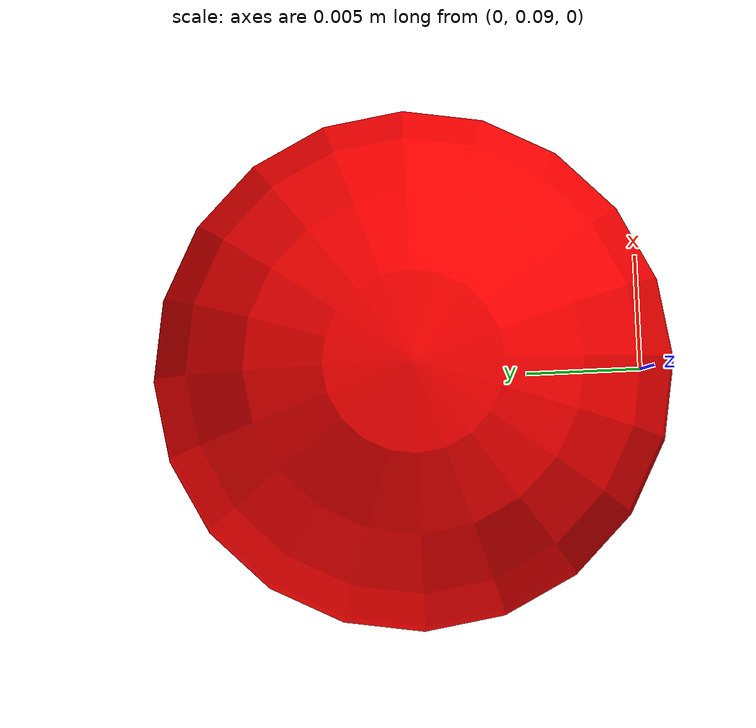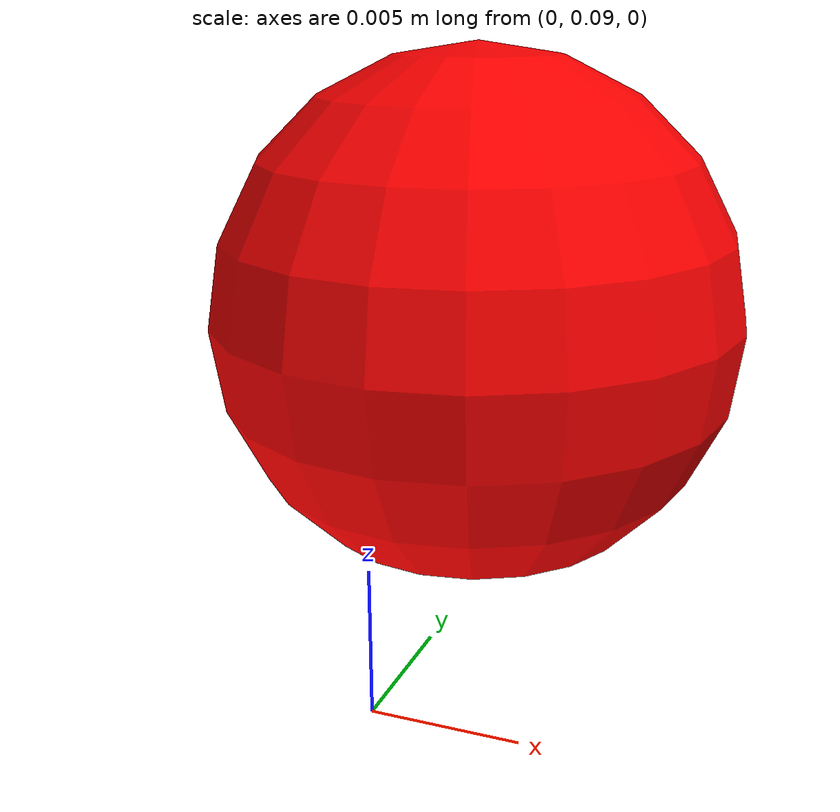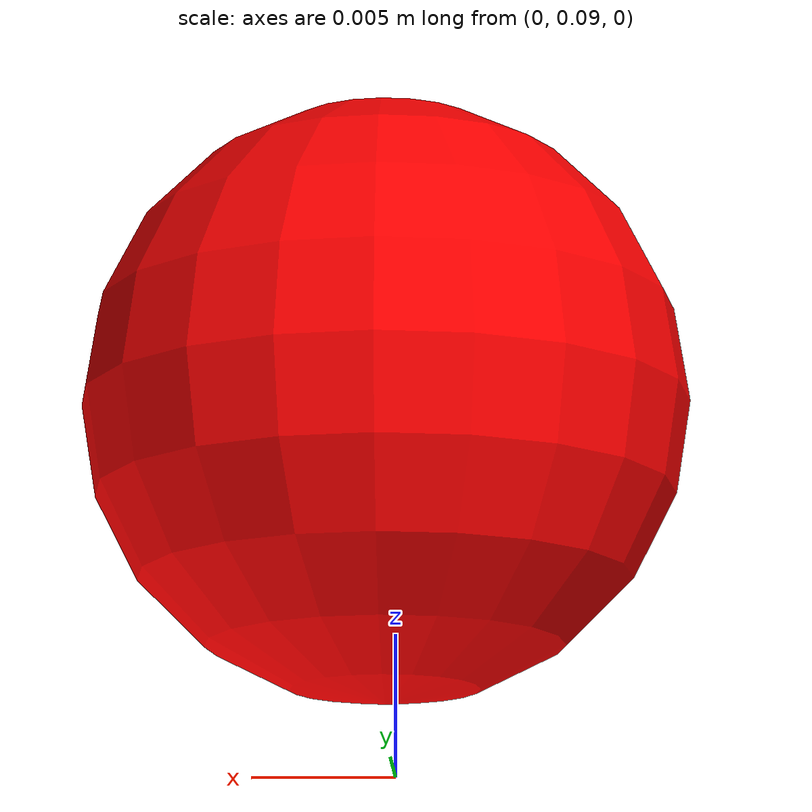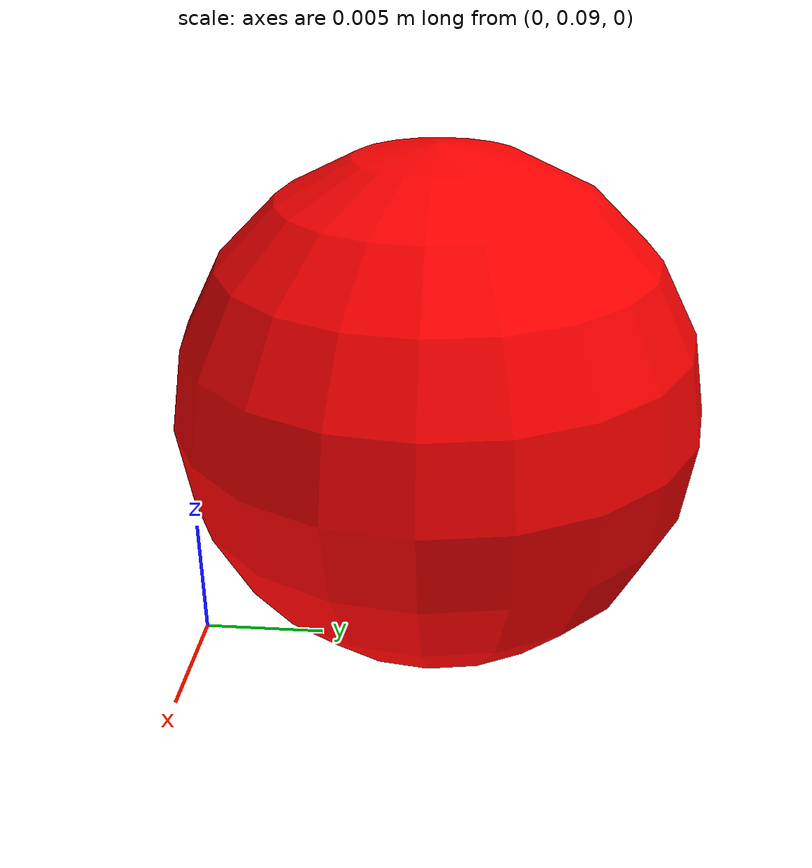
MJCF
<mujoco model="push">
  <!-- Solver options live in Python (configs/numerics/push.yaml). -->

  <default>
    <velocity ctrllimited="true" ctrlrange="-1.0 1.0" kv="0.1"/>
    <default class="goal">
      <geom conaffinity="0" contype="0" rgba="0 1 0 0.2"/>
    </default>
    <geom friction="1.0" solimp="0.0 0.95 0.005" solref="0.02 1"/>
  </default>

  <worldbody>
    <!-- "goal"/"block" geoms are grafted from the chosen shape at build time;
         joint pos is overwritten with the shape's COM. -->
    <body name="goal" mocap="true" pos="0.0 0.0 0.0">
    </body>

    <body name="block" pos="0.0 0.0 0.0">
      <joint name="block_x" type="slide" pos="0 0 0" axis="1 0 0" />
      <joint name="block_y" type="slide" pos="0 0 0" axis="0 1 0" />
      <joint name="block_yaw" type="hinge" pos="0 0 0" axis="0 0 1"/>
    </body>

    <body name="pusher" pos="0 .1 .011">
      <joint name="root_x" type="slide" pos="0 0 0" axis="1 0 0" />
      <joint name="root_y" type="slide" pos="0 0 0" axis="0 1 0" />
      <geom name="pusher" type="sphere" size=".01" rgba="1 0 0 1" />
      <site name="pusher" pos="0 0 0" rgba="0 0 0 0"/>
    </body>
  </worldbody>

  <actuator>
    <velocity name="x_motor" joint="root_x" />
    <velocity name="y_motor" joint="root_y" />
  </actuator>

  <!-- xbody (kinematic frame), not body (inertial frame): avoids
       misalignment for shapes whose principal axes aren't geom-aligned. -->
  <sensor>
    <framepos name="position" objtype="xbody" objname="block" reftype="xbody" refname="goal"/>
    <framequat name="orientation" objtype="xbody" objname="block" reftype="xbody" refname="goal"/>
    <framepos name="pusher_to_block" objtype="body" objname="pusher" reftype="body" refname="block"/>
  </sensor>
</mujoco>
